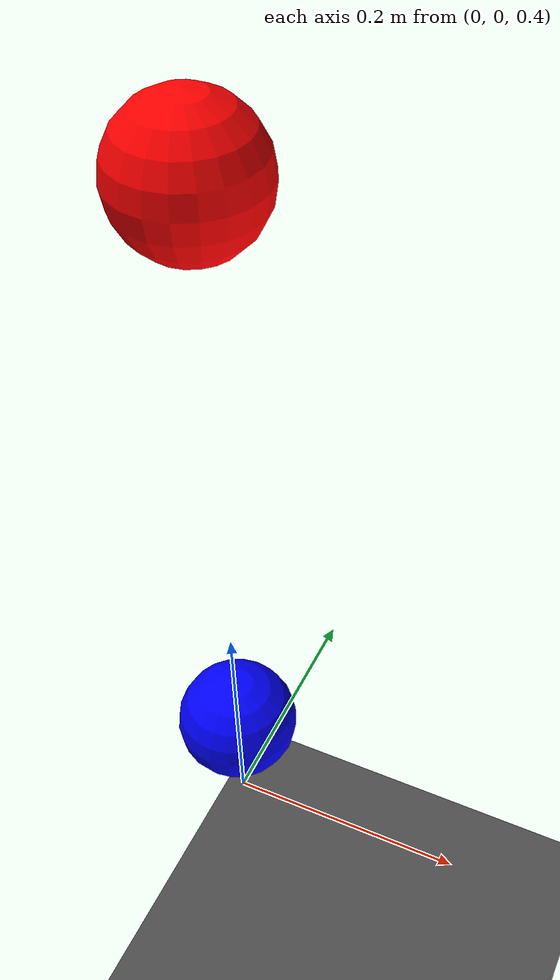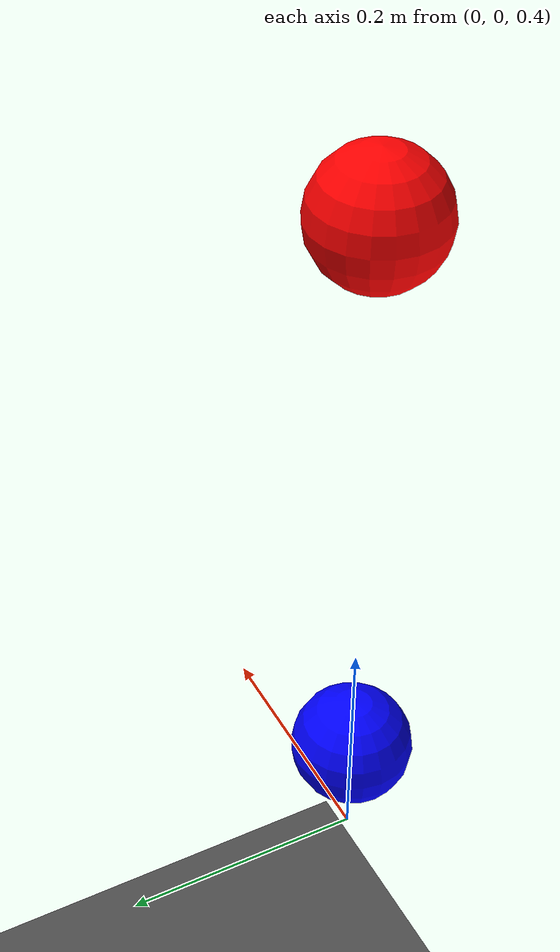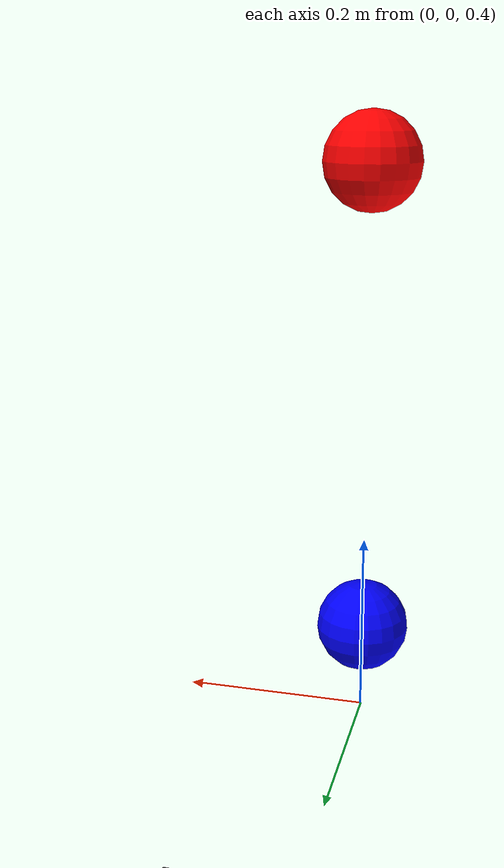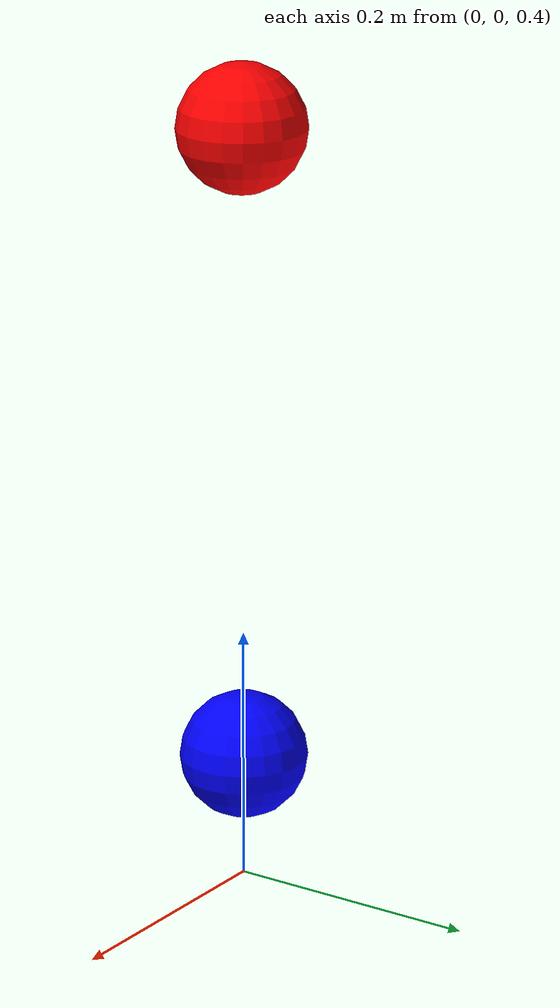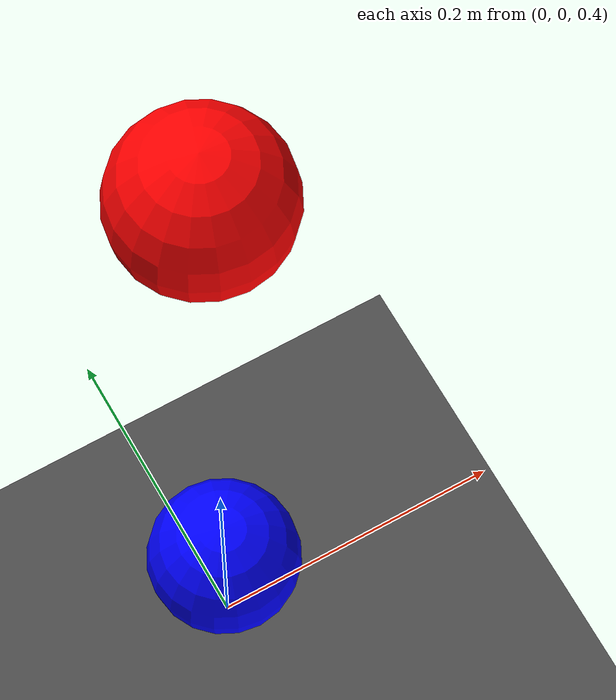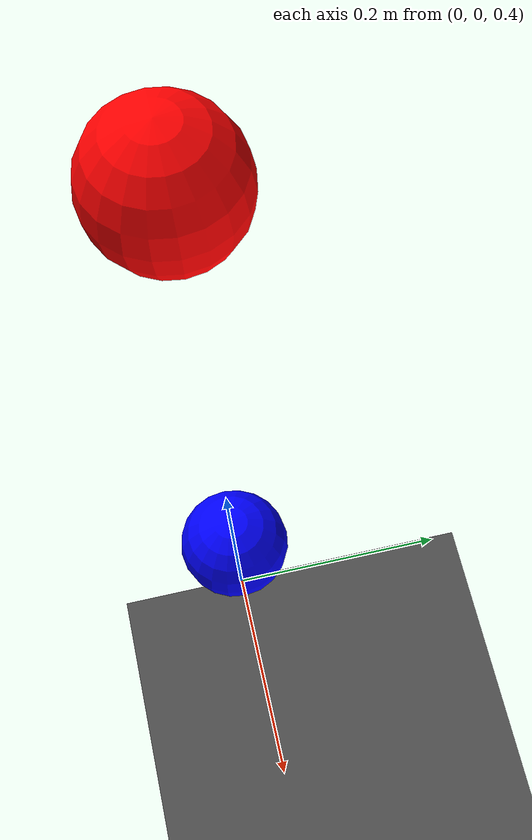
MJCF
<mujoco model="two_point_masses">
  <compiler angle="degree"/>
  <option timestep="0.01" gravity="0 0 -9.81"/>

  <!-- Default properties -->
  <default>
    <joint damping="1"/>
    <geom density="1000" friction="1 0.5 0.5" margin="0.002"/>
  </default>

  <worldbody>
    <!-- A ground plane -->
    <geom name="floor" type="plane" pos="0 0 0" size="10 10 0.1" rgba="0.3 0.3 0.3 1"/>

    <!-- First point mass (red) with a free joint -->
    <body name="mass1" pos="0 0 1">
      <joint name="mass1_free" type="free"/>
      <geom name="mass1_geom" type="sphere" size="0.05" rgba="1 0 0 1"/>
    </body>

    <!-- Second point mass (blue) with a free joint -->
    <body name="mass2" pos="0 0 0.5">
      <joint name="mass2_free" type="free"/>
      <geom name="mass2_geom" type="sphere" size="0.05" rgba="0 0 1 1"/>
    </body>

    <!-- Visual rod connecting the two masses.
         The "fromto" attribute is set initially using the starting positions
         of mass1 (at 0,0,1) and mass2 (at 0,0,0.5). -->
  </worldbody>

  <visual>
    <headlight ambient="0.3 0.3 0.3" diffuse="1 1 1"/>
  </visual>
</mujoco>
